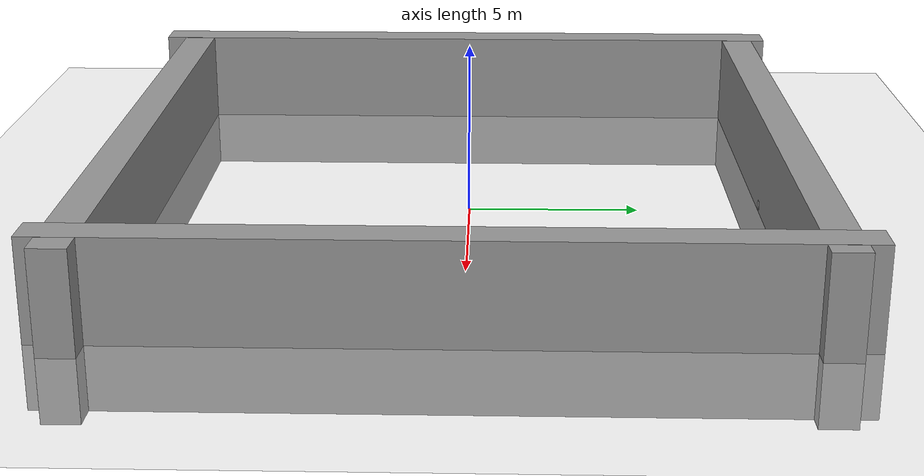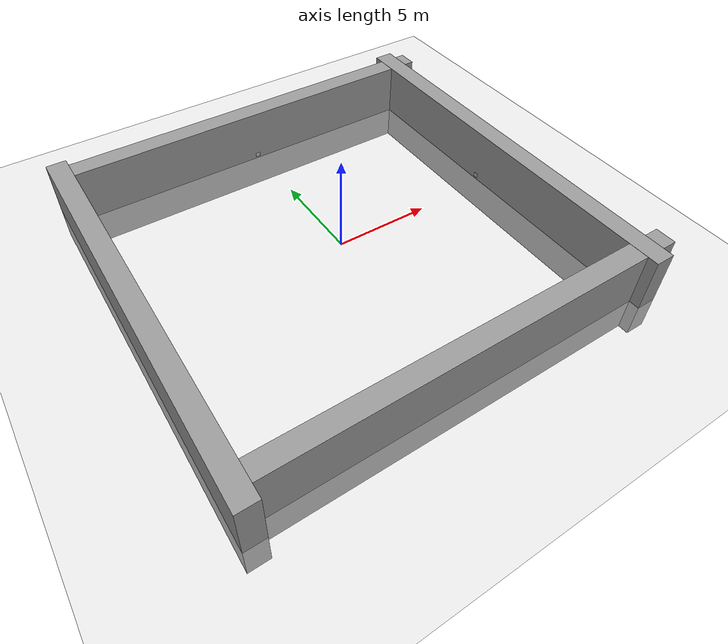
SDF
<sdf version="1.7">
 <world name="default">
  <model name="ground_plane">
   <static>1</static>
   <link name="link">
    <collision name="collision">
     <geometry><plane><normal>0 0 1</normal><size>100 100</size></plane></geometry>
     <surface><friction><ode><mu>100</mu><mu2>50</mu2></ode></friction></surface>
    </collision>
    <visual name="visual">
     <cast_shadows>0</cast_shadows>
     <geometry><plane><normal>0 0 1</normal><size>100 100</size></plane></geometry>
     <material>
      <script><uri>file://media/materials/scripts/gazebo.material</uri><name>Gazebo/Grey</name></script>
     </material>
    </visual>
   </link>
  </model>
  <light name="sun" type="directional">
   <pose>0 0 10 0 -0 0</pose>
   <diffuse>0.8 0.8 0.8 1</diffuse>
   <specular>0.2 0.2 0.2 1</specular>
   <attenuation>
    <range>1000</range>
    <constant>0.9</constant>
    <linear>0.01</linear>
    <quadratic>0.001</quadratic>
   </attenuation>
   <direction>-0.5 0.1 -0.9</direction>
   <spot><inner_angle>0</inner_angle><outer_angle>0</outer_angle><falloff>0</falloff></spot>
  </light>
  <scene><shadows>0</shadows><ambient>0.4 0.4 0.4 1</ambient><background>0.7 0.7 0.7 1</background></scene>
  <physics type="ode">
   <real_time_update_rate>1000</real_time_update_rate>
   <max_step_size>0.001</max_step_size>
   <real_time_factor>1</real_time_factor>
   <ode>
    <solver>
     <type>quick</type>
     <iters>150</iters>
     <precon_iters>0</precon_iters>
     <sor>1.4</sor>
     <use_dynamic_moi_rescaling>1</use_dynamic_moi_rescaling>
    </solver>
    <constraints>
     <cfm>1e-05</cfm>
     <erp>0.2</erp>
     <contact_max_correcting_vel>2000</contact_max_correcting_vel>
     <contact_surface_layer>0.01</contact_surface_layer>
    </constraints>
   </ode>
  </physics>
  <gravity>0 0 -9.8</gravity>
  <magnetic_field>6e-06 2.3e-05 -4.2e-05</magnetic_field>
  <atmosphere type="adiabatic"/>
  <spherical_coordinates>
   <surface_model>EARTH_WGS84</surface_model>
   <latitude_deg>0</latitude_deg>
   <longitude_deg>0</longitude_deg>
   <elevation>0</elevation>
   <heading_deg>0</heading_deg>
  </spherical_coordinates>
  <model name="qr_code_3">
   <static>1</static>
   <link name="link">
    <visual name="visual">
     <cast_shadows>0</cast_shadows>
     <geometry><box><size>0.01 0.25 0.25</size></box></geometry>
     <material>
      <script>
       <uri>model://qr_code_3/materials/scripts</uri>
       <uri>model://qr_code_3/materials/textures</uri>
       <name>QRCode3/Image</name>
      </script>
     </material>
    </visual>
   </link>
   <pose>-0.095129 8.60848 0.173466 0 0 -1.5708</pose>
  </model>
  <model name="qr_code_4">
   <static>1</static>
   <link name="link">
    <visual name="visual">
     <cast_shadows>0</cast_shadows>
     <geometry><box><size>0.01 0.25 0.25</size></box></geometry>
     <material>
      <script>
       <uri>model://qr_code_4/materials/scripts</uri>
       <uri>model://qr_code_4/materials/textures</uri>
       <name>QRCode4/Image</name>
      </script>
     </material>
    </visual>
   </link>
   <pose>9.05615 0.506386 0.193656 0 -0 0</pose>
  </model>
  <model name="unit_box">
   <pose>-0.087497 9.11227 0.5 0 -0 0</pose>
   <link name="link">
    <inertial>
     <mass>1</mass>
     <inertia>
      <ixx>0.166667</ixx>
      <ixy>0</ixy>
      <ixz>0</ixz>
      <iyy>0.166667</iyy>
      <iyz>0</iyz>
      <izz>0.166667</izz>
     </inertia>
    </inertial>
    <collision name="collision"><geometry><box><size>21.3414 1 4.56571</size></box></geometry></collision>
    <visual name="visual">
     <geometry><box><size>21.3414 1 4.56571</size></box></geometry>
     <material>
      <script><name>Gazebo/Grey</name><uri>file://media/materials/scripts/gazebo.material</uri></script>
     </material>
    </visual>
   </link>
  </model>
  <model name="unit_box_0">
   <pose>9.55924 -0.253158 0.5 0 -0 0</pose>
   <link name="link">
    <inertial>
     <mass>1</mass>
     <inertia>
      <ixx>0.166667</ixx>
      <ixy>0</ixy>
      <ixz>0</ixz>
      <iyy>0.166667</iyy>
      <iyz>0</iyz>
      <izz>0.166667</izz>
     </inertia>
    </inertial>
    <collision name="collision"><geometry><box><size>1 20.8763 4.57252</size></box></geometry></collision>
    <visual name="visual">
     <geometry><box><size>1 20.8763 4.57252</size></box></geometry>
     <material>
      <script><name>Gazebo/Grey</name><uri>file://media/materials/scripts/gazebo.material</uri></script>
     </material>
    </visual>
   </link>
  </model>
  <model name="unit_box_clone">
   <pose>0.143441 -9.67743 0.5 0 -0 0</pose>
   <link name="link">
    <inertial>
     <mass>1</mass>
     <inertia>
      <ixx>0.166667</ixx>
      <ixy>0</ixy>
      <ixz>0</ixz>
      <iyy>0.166667</iyy>
      <iyz>0</iyz>
      <izz>0.166667</izz>
     </inertia>
    </inertial>
    <collision name="collision"><geometry><box><size>21.3414 1 4.56571</size></box></geometry></collision>
    <visual name="visual">
     <geometry><box><size>21.3414 1 4.56571</size></box></geometry>
     <material>
      <script><name>Gazebo/Grey</name><uri>file://media/materials/scripts/gazebo.material</uri></script>
     </material>
    </visual>
   </link>
  </model>
  <model name="unit_box_0_clone">
   <pose>-10.3766 -0.384076 0.5 0 -0 0</pose>
   <link name="link">
    <inertial>
     <mass>1</mass>
     <inertia>
      <ixx>0.166667</ixx>
      <ixy>0</ixy>
      <ixz>0</ixz>
      <iyy>0.166667</iyy>
      <iyz>0</iyz>
      <izz>0.166667</izz>
     </inertia>
    </inertial>
    <collision name="collision"><geometry><box><size>1 20.8763 4.57252</size></box></geometry></collision>
    <visual name="visual">
     <geometry><box><size>1 20.8763 4.57252</size></box></geometry>
     <material>
      <script><name>Gazebo/Grey</name><uri>file://media/materials/scripts/gazebo.material</uri></script>
     </material>
    </visual>
   </link>
  </model>
 </world>
</sdf>
